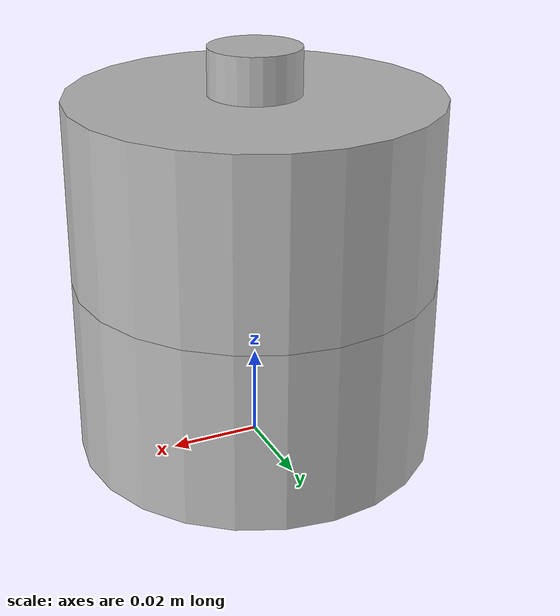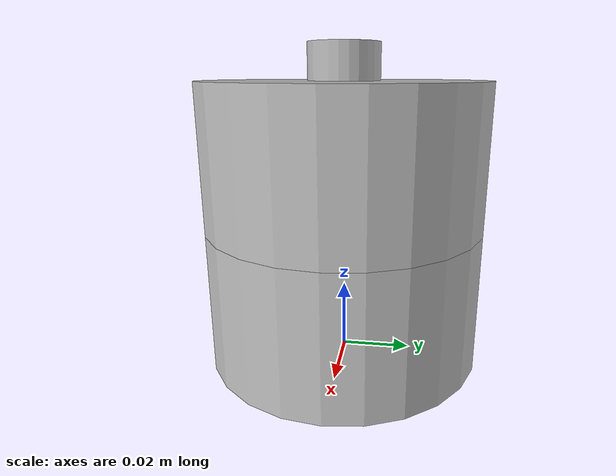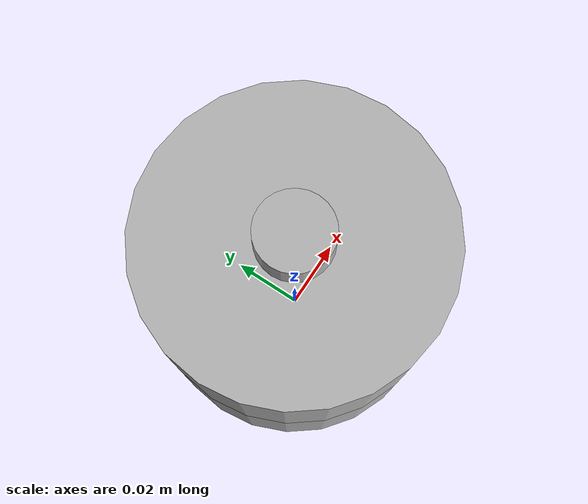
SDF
<?xml version="1.0" ?>
<sdf version="1.5">

    <!-- A global light source -->

  <model name="unicycle">
  <!-- Give the base link a unique name -->
  <link name="base">

    <!-- Offset the base by half the lenght of the cylinder -->
    <pose>0 0 0.02 0 0 0</pose>
<sensor type="ray" name="sensor">

  <pose>0 0 -0.004645 0 0 0</pose>

  <!-- Enable visualization to see the rays in the GUI -->
  <visualize>true</visualize>

  <!-- Set the update rate of the sensor -->
  <update_rate>30</update_rate>
<ray>
  <!-- The scan element contains the horizontal and vertical beams.
       We are leaving out the vertical beams for this tutorial. -->
  <scan>

    <!-- The horizontal beams -->
    <horizontal>
      <!-- The velodyne has 32 beams(samples) -->
      <samples>2</samples>

      <resolution>1</resolution>

      <!-- Minimum angle in radians -->
      <min_angle>0</min_angle>

      <!-- Maximum angle in radians -->
      <max_angle>1.5707</max_angle>
    </horizontal>
  </scan>

  <!-- Range defines characteristics of an individual beam -->
  <range>

    <!-- Minimum distance of the beam -->
    <min>0.05</min>

    <!-- Maximum distance of the beam -->
    <max>70</max>

    <!-- Linear resolution of the beam -->
    <resolution>0.02</resolution>
  </range>
</ray>
  <plugin name="gazebo_ros_velodyne_hdl-32-1_base_controller" filename="libgazebo_ros_laser.so">
        <topicName>/velodyne/laser/scan_without_noise</topicName>
        <frameName>scan_link_without_noise</frameName>
  </plugin>
</sensor>
     <inertial>
      <mass>1.2</mass>
      <inertia>
        <ixx>0.001087473</ixx>
        <iyy>0.001087473</iyy>
        <izz>0.001092437</izz>
        <ixy>0</ixy>
        <ixz>0</ixz>
        <iyz>0</iyz>
      </inertia>
    </inertial>
    <collision name="base_collision">
      <geometry>
        <cylinder>
          <!-- Radius and length provided by Velodyne -->
          <radius>.04</radius>
          <length>.04</length>
        </cylinder>
      </geometry>
    </collision>

    <!-- The visual is mostly a copy of the collision -->
    <visual name="base_visual">
      <geometry>
        <cylinder>
          <radius>.04</radius>
          <length>.04</length>
        </cylinder>
      </geometry>
    </visual>
  </link>

  <!-- Give the base link a unique name -->
  <link name="top">

    <!-- Vertically offset the top cylinder by the length of the bottom
        cylinder and half the length of this cylinder. -->
    <pose>0 0 0.06 0 0 0</pose>
<!-- Add a ray sensor, and give it a name -->
<sensor type="ray" name="sensor">

  <pose>0 0 -0.004645 0 0 0</pose>

  <!-- Enable visualization to see the rays in the GUI -->
  <visualize>true</visualize>

  <!-- Set the update rate of the sensor -->
  <update_rate>30</update_rate>
<ray>
    <noise>
      <!-- Use gaussian noise -->
      <type>gaussian</type>
      <mean>0.0</mean>
      <stddev>0.002</stddev>
    </noise>
  <!-- The scan element contains the horizontal and vertical beams.
       We are leaving out the vertical beams for this tutorial. -->
  <scan>

    <!-- The horizontal beams -->
    <horizontal>
      <!-- The velodyne has 32 beams(samples) -->
      <samples>2</samples>

      <resolution>1</resolution>

      <!-- Minimum angle in radians -->
      <min_angle>0</min_angle>

      <!-- Maximum angle in radians -->
      <max_angle>1.5707</max_angle>
    </horizontal>
  </scan>

  <!-- Range defines characteristics of an individual beam -->
  <range>

    <!-- Minimum distance of the beam -->
    <min>0.05</min>

    <!-- Maximum distance of the beam -->
    <max>70</max>

    <!-- Linear resolution of the beam -->
    <resolution>0.02</resolution>
  </range>
</ray>
  <plugin name="gazebo_ros_velodyne_hdl-32-1controller" filename="libgazebo_ros_laser.so">
        <topicName>/velodyne/laser/scan</topicName>
        <frameName>scan_link</frameName>
  </plugin>
</sensor>

    <inertial>
     <mass>0.1</mass>
     <inertia>
       <ixx>0.000090623</ixx>
       <iyy>0.000090623</iyy>
       <izz>0.000091036</izz>
       <ixy>0</ixy>
       <ixz>0</ixz>
       <iyz>0</iyz>
      </inertia>
     </inertial>
    <collision name="top_collision">
      <geometry>
        <cylinder>
          <!-- Radius and length provided by Velodyne -->
          <radius>0.04</radius>
          <length>0.04</length>
        </cylinder>
      </geometry>
    </collision>

    <!-- The visual is mostly a copy of the collision -->
    <visual name="top_visual">
      <geometry>
        <cylinder>
          <radius>0.04</radius>
          <length>0.04</length>
        </cylinder>
      </geometry>
    </visual>
  </link>
  <link name="camera_link">

    <pose>0 0 0.085 0 0 0</pose>

<sensor type="camera" name="camera1">
    <pose>0 0 -0.00004645 0 0 0</pose>
    <!--每秒获取的图像次数，但如果物理仿真运行速度快于传感器生成速度，那么它可能会滞后于这一目标速度-->
    <update_rate>30.0</update_rate>
    <camera name="head">
      <!--匹配物理相机硬件上制造商提供的规格数据-->
      <image>
        <width>800</width>
        <height>800</height>
        <format>R8G8B8</format>
      </image>
      <clip>
        <near>0.02</near>
        <far>300</far>
      </clip>
    </camera>
    <!--gazebo_ros/gazebo_ros_camera.cpp-->
    <plugin name="camera_controller" filename="libgazebo_ros_camera.so">
      <alwaysOn>true</alwaysOn>
      <updateRate>0.0</updateRate>
      <cameraName>unicycle/camera1</cameraName>
      <!--图像topic-->
      <imageTopicName>image_raw</imageTopicName>
		  <!--相机信息topic-->
      <cameraInfoTopicName>camera_info</cameraInfoTopicName>

  <!--图像在tf树中发布的坐标系-->
      <frameName>camera_link</frameName>
      <hackBaseline>0.07</hackBaseline>
      <distortionK1>0.0</distortionK1>
      <distortionK2>0.0</distortionK2>
      <distortionK3>0.0</distortionK3>
      <distortionT1>0.0</distortionT1>
      <distortionT2>0.0</distortionT2>
    </plugin>
</sensor>

    <inertial>
     <mass>0.1</mass>
     <inertia>
       <ixx>0.000090623</ixx>
       <iyy>0.000090623</iyy>
       <izz>0.000091036</izz>
       <ixy>0</ixy>
       <ixz>0</ixz>
       <iyz>0</iyz>
      </inertia>
     </inertial>
    <collision name="camera_collision">
      <geometry>
        <cylinder>
          <!-- Radius and length provided by camera -->
          <radius>0.01</radius>
          <length>0.01</length>
        </cylinder>
      </geometry>
    </collision>

    <!-- The visual is mostly a copy of the collision -->
    <visual name="camera_visual">
      <geometry>
        <cylinder>
          <radius>0.01</radius>
          <length>0.01</length>
        </cylinder>
      </geometry>
    </visual>
  </link>
  <!-- Each joint must have a unique name -->
<joint name="camera_joint" type="fixed">
  <!-- Position the joint at the bottom of the top link -->
  <pose>0 0 -0.03 0 0 0</pose>

  <!-- Use the base link as the parent of the joint -->
  <parent>top</parent>

  <!-- Use the top link as the child of the joint -->
  <child>camera_link</child>

  <!-- The axis defines the joint's degree of freedom -->
  <axis>

    <!-- Revolve around the z-axis -->
    <xyz>0 0 1</xyz>

    <!-- Limit refers to the range of motion of the joint -->
    <limit>

      <!-- Use a very large number to indicate a continuous revolution -->
      <lower>-10000000000000000</lower>
      <upper>10000000000000000</upper>
    </limit>
  </axis>
</joint>
<joint type="revolute" name="joint">

  <!-- Position the joint at the bottom of the top link -->
  <pose>0 0 -0.036785 0 0 0</pose>

  <!-- Use the base link as the parent of the joint -->
  <parent>base</parent>

  <!-- Use the top link as the child of the joint -->
  <child>top</child>

  <!-- The axis defines the joint's degree of freedom -->
  <axis>

    <!-- Revolve around the z-axis -->
    <xyz>0 0 1</xyz>

    <!-- Limit refers to the range of motion of the joint -->
    <limit>

      <!-- Use a very large number to indicate a continuous revolution -->
      <lower>-10000000000000000</lower>
      <upper>10000000000000000</upper>
    </limit>
  </axis>
</joint>
</model>
</sdf>
